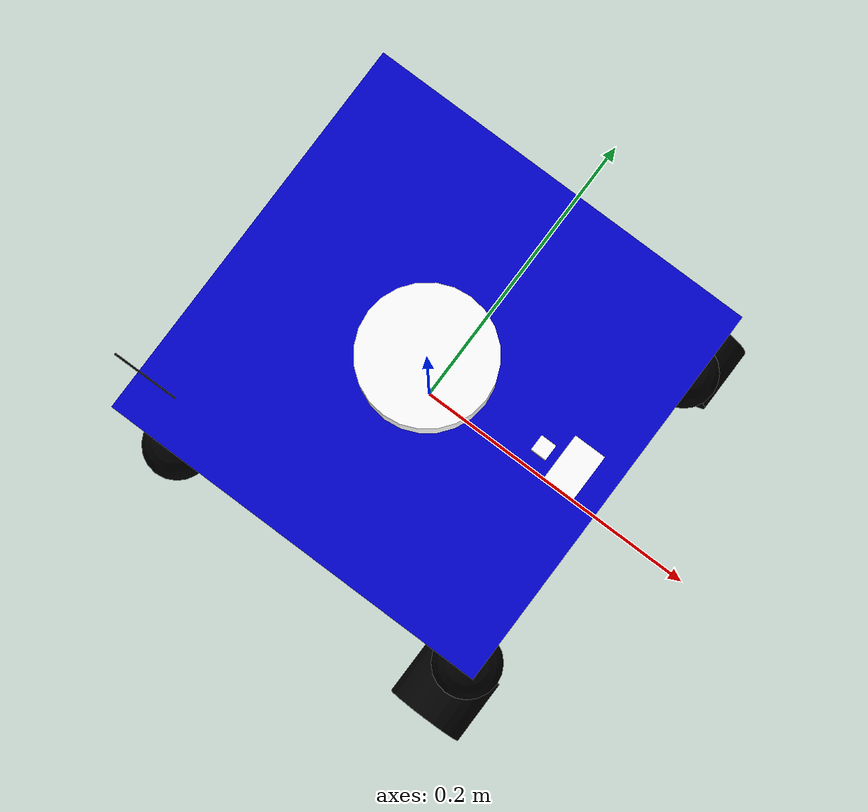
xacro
<?xml version="1.0"?>
<robot name="mybot" xmlns:xacro="http://ros.org/wiki/xacro">

  <xacro:include filename="$(find bingda_tutorials)/urdf/mybot.gazebo.xacro" />
  <link name="base_footprint"/>

  <joint name="base_joint" type="fixed">
    <parent link="base_footprint"/>
    <child link="base_link"/>
    <origin rpy="0 0 0" xyz="0 0 0"/>
  </joint>

  <link name="base_link">
    <inertial>
     <origin xyz="0 0 0" rpy="0 0 0"/>
     <mass value="2.0"/>
     <inertia ixx="0.0001"  ixy="0"  ixz="0" iyy="0.0001" iyz="0" izz="0.001" />
    </inertial>

    <visual>
      <geometry>
        <box size="0.25 0.25 0.35"/>
      </geometry>
      <origin rpy="0 0 0" xyz="0 0 0"/>
      <material name="blue">
          <color rgba="0 0 0.8 1"/>
      </material>
    </visual>

   <collision>
     <origin xyz="0 0 0" rpy="0 0 0"/>
     <geometry>
       <box size="0.25 0.25 0.35"/>
     </geometry>
   </collision>

  </link>

  <link name="right_wheel_link">
    <inertial>
     <origin xyz="0 0 0" rpy="0 0 0"/>
     <mass value="0.2"/>
     <inertia ixx="0.0001"  ixy="0"  ixz="0" iyy="0.0001" iyz="0" izz="0.0001" />
    </inertial>

    <visual>
      <geometry>
        <cylinder length="0.05" radius="0.03"/>
      </geometry>
      <material name="black">
        <color rgba="0 0 0 1"/>
      </material>
    </visual>

    <collision>
     <origin xyz="0 0 0" rpy="0 0 0"/>
     <geometry>
       <cylinder length="0.05" radius="0.03"/>
     </geometry>
    </collision>
  </link>

  <joint name="right_wheel_joint" type="continuous">
    <axis xyz="0 0 -1"/>
    <parent link="base_link"/>
    <child link="right_wheel_link"/>
    <origin rpy="1.5707 0 0" xyz="0.125 -0.15 -0.175"/>
  </joint>

  <link name="left_wheel_link">
    <inertial>
     <origin xyz="0 0 0" rpy="0 0 0"/>
     <mass value="0.2"/>
     <inertia ixx="0.0001"  ixy="0"  ixz="0" iyy="0.0001" iyz="0" izz="0.0001" />
    </inertial>

    <visual>
      <geometry>
        <cylinder length="0.05" radius="0.03"/>
      </geometry>
      <material name="black">
        <color rgba="0 0 0 1"/>
      </material>
    </visual>

    <collision>
     <origin xyz="0 0 0" rpy="0 0 0"/>
     <geometry>
       <cylinder length="0.05" radius="0.03"/>
     </geometry>
    </collision>
  </link>

  <joint name="left_wheel_joint" type="continuous">
    <axis xyz="0 0 -1"/>
    <parent link="base_link"/>
    <child link="left_wheel_link"/>
    <origin rpy="1.5707 0 0" xyz="0.125 0.15 -0.175"/>
  </joint>

  <link name="ball_wheel_link">
    <inertial>
     <origin xyz="0 0 0" rpy="0 0 0"/>
     <mass value="0.2"/>
     <inertia ixx="0"  ixy="0"  ixz="0" iyy="0" iyz="0" izz="0" />
    </inertial>

    <visual>
      <geometry>
        <sphere radius="0.03"/>
      </geometry>
      <material name="black">
        <color rgba="0 0 0 1"/>
      </material>
    </visual>

    <collision>
     <origin xyz="0 0 0" rpy="0 0 0"/>
     <geometry>
       <sphere radius="0.03"/>
     </geometry>
    </collision>
  </link>

  <joint name="ball_wheel_joint" type="fixed">
    <axis xyz="0 0 1"/>
    <parent link="base_link"/>
    <child link="ball_wheel_link"/>
    <origin rpy="0 0 0" xyz="-0.08 0 -0.175"/>
  </joint>
  <!-- imu sensor -->
  <link name="imu">
    <visual>
      <geometry>
        <box size="0.01 0.01 0.01"/>
      </geometry>
      <material name="white">
          <color rgba="1 1 1 1"/>
      </material>
    </visual>
  </link>

  <joint name="imu_joint" type="fixed">
    <parent link="base_link"/>
    <child link="imu"/>
    <origin xyz="0.08 0 0.175"/>
  </joint>

  <!-- camera -->
  <link name="base_camera_link">
    <visual>
      <geometry>
        <box size="0.02 0.03 0.03"/>
      </geometry>
      <material name="white">
          <color rgba="1 1 1 1"/>
      </material>
    </visual>
  </link>

  <joint name="camera_joint" type="fixed">
    <parent link="base_link"/>
    <child link="base_camera_link"/>
    <origin xyz="0.1 0 0.175"/>
  </joint>
  <!-- laser lidar -->
  <link name="base_laser_link">
    <visual>
      <geometry>
        <cylinder length="0.06" radius="0.04"/>
      </geometry>
      <material name="white">
          <color rgba="1 1 1 1"/>
      </material>
    </visual>
  </link>

  <joint name="laser_joint" type="fixed">
    <parent link="base_link"/>
    <child link="base_laser_link"/>
    <origin xyz="0 0.0 0.175"/>
  </joint>

  <!-- Logical Audio -->
  <link name="base_audio_link_1">
    <visual>
      <geometry>
        <sphere radius="0.025"/>
      </geometry>
      <material name="blue">
        <color rgba="0 0 0 1"/>
      </material>
    </visual>
  </link>

  <joint name="base_audio_link_1" type="fixed">
    <parent link="base_link"/>
    <child link="base_audio_link_1"/>
    <origin xyz="0.125 0.125 -0.1"/>
  </joint>

    <link name="base_audio_link_2">
    <visual>
      <geometry>
        <sphere radius="0.025"/>
      </geometry>
      <material name="blue">
        <color rgba="0 0 0 1"/>
      </material>
    </visual>
  </link>

  <joint name="base_audio_link_2" type="fixed">
    <parent link="base_link"/>
    <child link="base_audio_link_2"/>
    <origin xyz="0.125 -0.125 -0.1"/>
  </joint>

  <link name="base_audio_link_3">
    <visual>
      <geometry>
        <sphere radius="0.025"/>
      </geometry>
      <material name="blue">
        <color rgba="0 0 0 1"/>
      </material>
    </visual>
  </link>

  <joint name="base_audio_link_3" type="fixed">
    <parent link="base_link"/>
    <child link="base_audio_link_3"/>
    <origin xyz="-0.125 -0.125 -0.1"/>
  </joint>

  <link name="base_audio_link_4">
    <visual>
      <geometry>
        <sphere radius="0.025"/>
      </geometry>
      <material name="blue">
        <color rgba="0 0 0 1"/>
      </material>
    </visual>
  </link>

  <joint name="base_audio_link_4" type="fixed">
    <parent link="base_link"/>
    <child link="base_audio_link_4"/>
    <origin xyz="-0.125 0.125 -0.1"/>
  </joint>

  <link name="base_RFID_link_r">
    <visual>
      <geometry>
        <box size="0.001 0.001 0.2"/>
      </geometry>
      <material name="blue">
        <color rgba="0 0 0 1"/>
      </material>
    </visual>
  </link>

  <joint name="base_RFID_link_r" type="fixed">
    <parent link="base_link"/>
    <child link="base_RFID_link_r"/>
    <origin xyz="-0.1 -0.1 0.275"/>
  </joint>

</robot>
